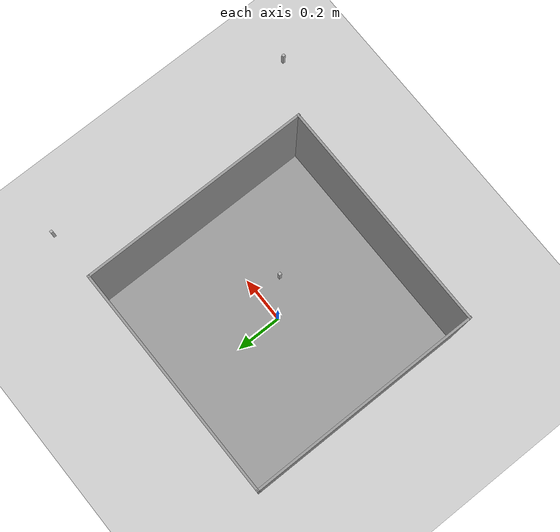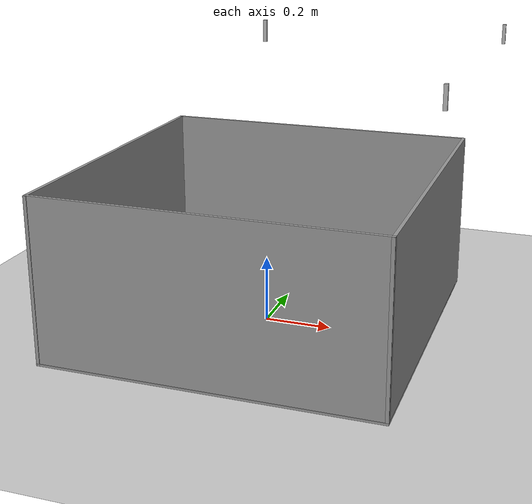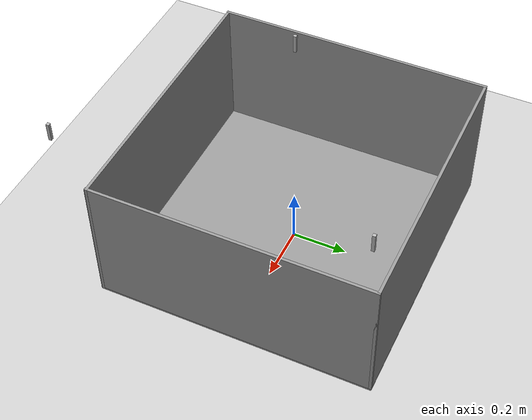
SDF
<sdf version="1.6">
 <world name="grabbing_book_v">
  <include><uri>model://sun</uri></include>
  <include><uri>model://ground_plane</uri></include>
  <include>
   <uri>model://freezer_box</uri>
   <pose>0.000000 0.000000 0.000000 0.000000 0.0000000 0.000001</pose>
  </include>
  <include>
   <uri>model://finger</uri>
   <name>left_ee</name>
   <pose>0.000000 0.000000 0.880000 0.000000 0.000000 1.57080</pose>
   <plugin name="l_force_controller" filename="libvelocity_controller_plugin.so">
    <linkName>link</linkName>
    <topicName>set_l_ee_twist</topicName>
    <gains>
     <linear><P>100.0</P><I>0.0</I><D>25.0</D></linear>
     <angular><P>100.0</P><I>0.0</I><D>25.0</D></angular>
    </gains>
   </plugin>
   <plugin name="l_tf_broadcaster" filename="libtf_broadcaster_plugin.so">
    <linkName>link</linkName>
    <frameName>l_gripper_tool_frame</frameName>
   </plugin>
  </include>
  <include>
   <uri>model://finger</uri>
   <name>right_ee</name>
   <pose>0.600000 0.500000 0.830000 0.000000 0.000000 1.57080</pose>
   <plugin name="r_force_controller" filename="libvelocity_controller_plugin.so">
    <linkName>link</linkName>
    <topicName>set_r_ee_twist</topicName>
    <gains>
     <linear><P>100.0</P><I>0.0</I><D>25.0</D></linear>
     <angular><P>100.0</P><I>0.0</I><D>25.0</D></angular>
    </gains>
   </plugin>
   <plugin name="r_tf_broadcaster" filename="libtf_broadcaster_plugin.so">
    <linkName>link</linkName>
    <frameName>r_gripper_tool_frame</frameName>
   </plugin>
  </include>
  <include>
   <uri>model://finger</uri>
   <name>right_ee_2</name>
   <pose>0.600000 -0.500000 0.830000 0.000000 0.000000 1.57080</pose>
   <plugin name="r_2_force_controller" filename="libvelocity_controller_plugin.so">
    <linkName>link</linkName>
    <topicName>set_r_ee_2_twist</topicName>
    <gains>
     <linear><P>100.0</P><I>0.0</I><D>25.0</D></linear>
     <angular><P>100.0</P><I>0.0</I><D>25.0</D></angular>
    </gains>
   </plugin>
   <plugin name="r_2_tf_broadcaster" filename="libtf_broadcaster_plugin.so">
    <linkName>link</linkName>
    <frameName>r_2_gripper_tool_frame</frameName>
   </plugin>
  </include>
  <plugin name="feature_visualization_plugin" filename="libgiskard_visualization_plugin.so"/>
 </world>
</sdf>

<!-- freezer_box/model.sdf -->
<sdf version='1.6'>
  <model name='freezer_box'>
    <link name='link'>
      <pose frame=''>0 0 0 0 -0 0</pose>
      <inertial>
        <mass>1</mass>
        <inertia>
          <ixx>0.166667</ixx>
          <ixy>0</ixy>
          <ixz>0</ixz>
          <iyy>0.166667</iyy>
          <iyz>0</iyz>
          <izz>0.166667</izz>
        </inertia>
        <pose frame=''>0 0 0 0 -0 0</pose>
      </inertial>
      <self_collide>0</self_collide>
      <kinematic>0</kinematic>
      <gravity>1</gravity>
      <visual name='visual'>
        <geometry>
          <box>
            <size>1 1 0.01</size>
          </box>
        </geometry>
        <material>
          <script>
            <name>Gazebo/Grey</name>
            <uri>file://media/materials/scripts/gazebo.material</uri>
          </script>
          <ambient>0.3 0.3 0.3 1</ambient>
          <diffuse>0.7 0.7 0.7 1</diffuse>
          <specular>0.01 0.01 0.01 1</specular>
          <emissive>0 0 0 1</emissive>
          <shader type='vertex'>
            <normal_map>__default__</normal_map>
          </shader>
        </material>
        <pose frame=''>0 0 0 0 -0 0</pose>
        <transparency>0</transparency>
        <cast_shadows>1</cast_shadows>
      </visual>
      <collision name='collision'>
        <laser_retro>0</laser_retro>
        <max_contacts>10</max_contacts>
        <pose frame=''>0 0 0 0 -0 0</pose>
        <geometry>
          <box>
            <size>1 1 0.01</size>
          </box>
        </geometry>
        <surface>
          <friction>
            <ode>
              <mu>1</mu>
              <mu2>1</mu2>
              <fdir1>0 0 0</fdir1>
              <slip1>0</slip1>
              <slip2>0</slip2>
            </ode>
            <torsional>
              <coefficient>1</coefficient>
              <patch_radius>0</patch_radius>
              <surface_radius>0</surface_radius>
              <use_patch_radius>1</use_patch_radius>
              <ode>
                <slip>0</slip>
              </ode>
            </torsional>
          </friction>
          <bounce>
            <restitution_coefficient>0</restitution_coefficient>
            <threshold>1e+06</threshold>
          </bounce>
          <contact>
            <collide_without_contact>0</collide_without_contact>
            <collide_without_contact_bitmask>1</collide_without_contact_bitmask>
            <collide_bitmask>1</collide_bitmask>
            <ode>
              <soft_cfm>0</soft_cfm>
              <soft_erp>0.2</soft_erp>
              <kp>1e+13</kp>
              <kd>1</kd>
              <max_vel>0.01</max_vel>
              <min_depth>0</min_depth>
            </ode>
            <bullet>
              <split_impulse>1</split_impulse>
              <split_impulse_penetration_threshold>-0.01</split_impulse_penetration_threshold>
              <soft_cfm>0</soft_cfm>
              <soft_erp>0.2</soft_erp>
              <kp>1e+13</kp>
              <kd>1</kd>
            </bullet>
          </contact>
        </surface>
      </collision>
    </link>
    <link name='link_0'>
      <pose frame=''>0 -0.493 0.243 0 -0 1.5708</pose>
      <inertial>
        <mass>1</mass>
        <inertia>
          <ixx>0.166667</ixx>
          <ixy>0</ixy>
          <ixz>0</ixz>
          <iyy>0.166667</iyy>
          <iyz>0</iyz>
          <izz>0.166667</izz>
        </inertia>
        <pose frame=''>0 0 0 0 -0 0</pose>
      </inertial>
      <gravity>1</gravity>
      <self_collide>0</self_collide>
      <kinematic>0</kinematic>
      <visual name='visual'>
        <pose frame=''>0 0 0 0 -0 0</pose>
        <geometry>
          <box>
            <size>0.01 1 0.5</size>
          </box>
        </geometry>
        <material>
          <lighting>1</lighting>
          <script>
            <uri>file://media/materials/scripts/gazebo.material</uri>
            <name>Gazebo/Grey</name>
          </script>
          <ambient>0.3 0.3 0.3 1</ambient>
          <diffuse>0.7 0.7 0.7 1</diffuse>
          <specular>0.01 0.01 0.01 1</specular>
          <emissive>0 0 0 1</emissive>
          <shader type='vertex'>
            <normal_map>__default__</normal_map>
          </shader>
        </material>
        <transparency>0</transparency>
        <cast_shadows>1</cast_shadows>
      </visual>
      <collision name='collision'>
        <laser_retro>0</laser_retro>
        <max_contacts>10</max_contacts>
        <pose frame=''>0 0 0 0 -0 0</pose>
        <geometry>
          <box>
            <size>0.01 1 0.5</size>
          </box>
        </geometry>
        <surface>
          <friction>
            <ode>
              <mu>1</mu>
              <mu2>1</mu2>
              <fdir1>0 0 0</fdir1>
              <slip1>0</slip1>
              <slip2>0</slip2>
            </ode>
            <torsional>
              <coefficient>1</coefficient>
              <patch_radius>0</patch_radius>
              <surface_radius>0</surface_radius>
              <use_patch_radius>1</use_patch_radius>
              <ode>
                <slip>0</slip>
              </ode>
            </torsional>
          </friction>
          <bounce>
            <restitution_coefficient>0</restitution_coefficient>
            <threshold>1e+06</threshold>
          </bounce>
          <contact>
            <collide_without_contact>0</collide_without_contact>
            <collide_without_contact_bitmask>1</collide_without_contact_bitmask>
            <collide_bitmask>1</collide_bitmask>
            <ode>
              <soft_cfm>0</soft_cfm>
              <soft_erp>0.2</soft_erp>
              <kp>1e+13</kp>
              <kd>1</kd>
              <max_vel>0.01</max_vel>
              <min_depth>0</min_depth>
            </ode>
            <bullet>
              <split_impulse>1</split_impulse>
              <split_impulse_penetration_threshold>-0.01</split_impulse_penetration_threshold>
              <soft_cfm>0</soft_cfm>
              <soft_erp>0.2</soft_erp>
              <kp>1e+13</kp>
              <kd>1</kd>
            </bullet>
          </contact>
        </surface>
      </collision>
    </link>
    <link name='link_0_clone'>
      <pose frame=''>0.495 0 0.243 0 -0 0</pose>
      <inertial>
        <mass>1</mass>
        <inertia>
          <ixx>0.166667</ixx>
          <ixy>0</ixy>
          <ixz>0</ixz>
          <iyy>0.166667</iyy>
          <iyz>0</iyz>
          <izz>0.166667</izz>
        </inertia>
        <pose frame=''>0 0 0 0 -0 0</pose>
      </inertial>
      <self_collide>0</self_collide>
      <kinematic>0</kinematic>
      <visual name='visual'>
        <pose frame=''>0 0 0 0 -0 0</pose>
        <geometry>
          <box>
            <size>0.01 1 0.5</size>
          </box>
        </geometry>
        <material>
          <lighting>1</lighting>
          <script>
            <uri>file://media/materials/scripts/gazebo.material</uri>
            <name>Gazebo/Grey</name>
          </script>
          <ambient>0.3 0.3 0.3 1</ambient>
          <diffuse>0.7 0.7 0.7 1</diffuse>
          <specular>0.01 0.01 0.01 1</specular>
          <emissive>0 0 0 1</emissive>
          <shader type='vertex'>
            <normal_map>__default__</normal_map>
          </shader>
        </material>
        <transparency>0</transparency>
        <cast_shadows>1</cast_shadows>
      </visual>
      <collision name='collision'>
        <laser_retro>0</laser_retro>
        <max_contacts>10</max_contacts>
        <pose frame=''>0 0 0 0 -0 0</pose>
        <geometry>
          <box>
            <size>0.01 1 0.5</size>
          </box>
        </geometry>
        <surface>
          <friction>
            <ode>
              <mu>1</mu>
              <mu2>1</mu2>
              <fdir1>0 0 0</fdir1>
              <slip1>0</slip1>
              <slip2>0</slip2>
            </ode>
            <torsional>
              <coefficient>1</coefficient>
              <patch_radius>0</patch_radius>
              <surface_radius>0</surface_radius>
              <use_patch_radius>1</use_patch_radius>
              <ode>
                <slip>0</slip>
              </ode>
            </torsional>
          </friction>
          <bounce>
            <restitution_coefficient>0</restitution_coefficient>
            <threshold>1e+06</threshold>
          </bounce>
          <contact>
            <collide_without_contact>0</collide_without_contact>
            <collide_without_contact_bitmask>1</collide_without_contact_bitmask>
            <collide_bitmask>1</collide_bitmask>
            <ode>
              <soft_cfm>0</soft_cfm>
              <soft_erp>0.2</soft_erp>
              <kp>1e+13</kp>
              <kd>1</kd>
              <max_vel>0.01</max_vel>
              <min_depth>0</min_depth>
            </ode>
            <bullet>
              <split_impulse>1</split_impulse>
              <split_impulse_penetration_threshold>-0.01</split_impulse_penetration_threshold>
              <soft_cfm>0</soft_cfm>
              <soft_erp>0.2</soft_erp>
              <kp>1e+13</kp>
              <kd>1</kd>
            </bullet>
          </contact>
        </surface>
      </collision>
    </link>
    <link name='link_0_clone_0'>
      <pose frame=''>-0.495 0 0.243 0 -0 0</pose>
      <inertial>
        <mass>1</mass>
        <inertia>
          <ixx>0.166667</ixx>
          <ixy>0</ixy>
          <ixz>0</ixz>
          <iyy>0.166667</iyy>
          <iyz>0</iyz>
          <izz>0.166667</izz>
        </inertia>
        <pose frame=''>0 0 0 0 -0 0</pose>
      </inertial>
      <self_collide>0</self_collide>
      <kinematic>0</kinematic>
      <visual name='visual'>
        <pose frame=''>0 0 0 0 -0 0</pose>
        <geometry>
          <box>
            <size>0.01 1 0.5</size>
          </box>
        </geometry>
        <material>
          <lighting>1</lighting>
          <script>
            <uri>file://media/materials/scripts/gazebo.material</uri>
            <name>Gazebo/Grey</name>
          </script>
          <ambient>0.3 0.3 0.3 1</ambient>
          <diffuse>0.7 0.7 0.7 1</diffuse>
          <specular>0.01 0.01 0.01 1</specular>
          <emissive>0 0 0 1</emissive>
          <shader type='vertex'>
            <normal_map>__default__</normal_map>
          </shader>
        </material>
        <transparency>0</transparency>
        <cast_shadows>1</cast_shadows>
      </visual>
      <collision name='collision'>
        <laser_retro>0</laser_retro>
        <max_contacts>10</max_contacts>
        <pose frame=''>0 0 0 0 -0 0</pose>
        <geometry>
          <box>
            <size>0.01 1 0.5</size>
          </box>
        </geometry>
        <surface>
          <friction>
            <ode>
              <mu>1</mu>
              <mu2>1</mu2>
              <fdir1>0 0 0</fdir1>
              <slip1>0</slip1>
              <slip2>0</slip2>
            </ode>
            <torsional>
              <coefficient>1</coefficient>
              <patch_radius>0</patch_radius>
              <surface_radius>0</surface_radius>
              <use_patch_radius>1</use_patch_radius>
              <ode>
                <slip>0</slip>
              </ode>
            </torsional>
          </friction>
          <bounce>
            <restitution_coefficient>0</restitution_coefficient>
            <threshold>1e+06</threshold>
          </bounce>
          <contact>
            <collide_without_contact>0</collide_without_contact>
            <collide_without_contact_bitmask>1</collide_without_contact_bitmask>
            <collide_bitmask>1</collide_bitmask>
            <ode>
              <soft_cfm>0</soft_cfm>
              <soft_erp>0.2</soft_erp>
              <kp>1e+13</kp>
              <kd>1</kd>
              <max_vel>0.01</max_vel>
              <min_depth>0</min_depth>
            </ode>
            <bullet>
              <split_impulse>1</split_impulse>
              <split_impulse_penetration_threshold>-0.01</split_impulse_penetration_threshold>
              <soft_cfm>0</soft_cfm>
              <soft_erp>0.2</soft_erp>
              <kp>1e+13</kp>
              <kd>1</kd>
            </bullet>
          </contact>
        </surface>
      </collision>
    </link>
    <link name='link_0_clone_1'>
      <pose frame=''>-0 0.495 0.243 0 -0 -1.5708</pose>
      <inertial>
        <mass>1</mass>
        <inertia>
          <ixx>0.166667</ixx>
          <ixy>0</ixy>
          <ixz>0</ixz>
          <iyy>0.166667</iyy>
          <iyz>0</iyz>
          <izz>0.166667</izz>
        </inertia>
        <pose frame=''>0 0 0 0 -0 0</pose>
      </inertial>
      <self_collide>0</self_collide>
      <kinematic>0</kinematic>
      <visual name='visual'>
        <pose frame=''>0 0 0 0 -0 0</pose>
        <geometry>
          <box>
            <size>0.01 1 0.5</size>
          </box>
        </geometry>
        <material>
          <lighting>1</lighting>
          <script>
            <uri>file://media/materials/scripts/gazebo.material</uri>
            <name>Gazebo/Grey</name>
          </script>
          <ambient>0.3 0.3 0.3 1</ambient>
          <diffuse>0.7 0.7 0.7 1</diffuse>
          <specular>0.01 0.01 0.01 1</specular>
          <emissive>0 0 0 1</emissive>
          <shader type='vertex'>
            <normal_map>__default__</normal_map>
          </shader>
        </material>
        <transparency>0</transparency>
        <cast_shadows>1</cast_shadows>
      </visual>
      <collision name='collision'>
        <laser_retro>0</laser_retro>
        <max_contacts>10</max_contacts>
        <pose frame=''>0 0 0 0 -0 0</pose>
        <geometry>
          <box>
            <size>0.01 1 0.5</size>
          </box>
        </geometry>
        <surface>
          <friction>
            <ode>
              <mu>1</mu>
              <mu2>1</mu2>
              <fdir1>0 0 0</fdir1>
              <slip1>0</slip1>
              <slip2>0</slip2>
            </ode>
            <torsional>
              <coefficient>1</coefficient>
              <patch_radius>0</patch_radius>
              <surface_radius>0</surface_radius>
              <use_patch_radius>1</use_patch_radius>
              <ode>
                <slip>0</slip>
              </ode>
            </torsional>
          </friction>
          <bounce>
            <restitution_coefficient>0</restitution_coefficient>
            <threshold>1e+06</threshold>
          </bounce>
          <contact>
            <collide_without_contact>0</collide_without_contact>
            <collide_without_contact_bitmask>1</collide_without_contact_bitmask>
            <collide_bitmask>1</collide_bitmask>
            <ode>
              <soft_cfm>0</soft_cfm>
              <soft_erp>0.2</soft_erp>
              <kp>1e+13</kp>
              <kd>1</kd>
              <max_vel>0.01</max_vel>
              <min_depth>0</min_depth>
            </ode>
            <bullet>
              <split_impulse>1</split_impulse>
              <split_impulse_penetration_threshold>-0.01</split_impulse_penetration_threshold>
              <soft_cfm>0</soft_cfm>
              <soft_erp>0.2</soft_erp>
              <kp>1e+13</kp>
              <kd>1</kd>
            </bullet>
          </contact>
        </surface>
      </collision>
    </link>
    <joint name='link_JOINT_1' type='fixed'>
      <parent>link</parent>
      <child>link_0_clone_0</child>
      <pose frame=''>0 0 0 0 -0 0</pose>
      <physics>
        <ode>
          <limit>
            <cfm>0</cfm>
            <erp>0.2</erp>
          </limit>
          <suspension>
            <cfm>0</cfm>
            <erp>0.2</erp>
          </suspension>
        </ode>
      </physics>
    </joint>
    <joint name='link_JOINT_5' type='fixed'>
      <parent>link</parent>
      <child>link_0_clone</child>
      <pose frame=''>0 0 0 0 -0 0</pose>
      <physics>
        <ode>
          <limit>
            <cfm>0</cfm>
            <erp>0.2</erp>
          </limit>
          <suspension>
            <cfm>0</cfm>
            <erp>0.2</erp>
          </suspension>
        </ode>
      </physics>
    </joint>
    <joint name='link_JOINT_6' type='fixed'>
      <parent>link</parent>
      <child>link_0</child>
      <pose frame=''>0 0 0 0 -0 0</pose>
      <physics>
        <ode>
          <limit>
            <cfm>0</cfm>
            <erp>0.2</erp>
          </limit>
          <suspension>
            <cfm>0</cfm>
            <erp>0.2</erp>
          </suspension>
        </ode>
      </physics>
    </joint>
    <joint name='link_JOINT_7' type='fixed'>
      <parent>link</parent>
      <child>link_0_clone_1</child>
      <pose frame=''>0 0 0 0 -0 0</pose>
      <physics>
        <ode>
          <limit>
            <cfm>0</cfm>
            <erp>0.2</erp>
          </limit>
          <suspension>
            <cfm>0</cfm>
            <erp>0.2</erp>
          </suspension>
        </ode>
      </physics>
    </joint>
    <static>1</static>
    <allow_auto_disable>1</allow_auto_disable>
  </model>
</sdf>

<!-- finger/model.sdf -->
<sdf version='1.6'>
    <model name='gripper'>
        <static>false</static>
        <allow_auto_disable>false</allow_auto_disable>

        <pose>0 0 0 0 0 0</pose>

        <link name='link'>
            <pose>0 0 0 0 0 0</pose>

            <gravity>false</gravity>

            <collision name='collision'>
              <geometry>
                <box>
                  <size>0.01 0.01 0.06</size>
                </box>
              </geometry>
              <surface>
                <friction>
                  <ode>
                    <mu>999</mu>
                    <mu2>999</mu2>
                  </ode>
                </friction>
              </surface>
            </collision>

            <visual name='visual'>
                <geometry>
                  <box>
                    <size>0.01 0.01 0.06</size>
                  </box>
                </geometry>
            </visual>

        </link>
    </model>
</sdf>
